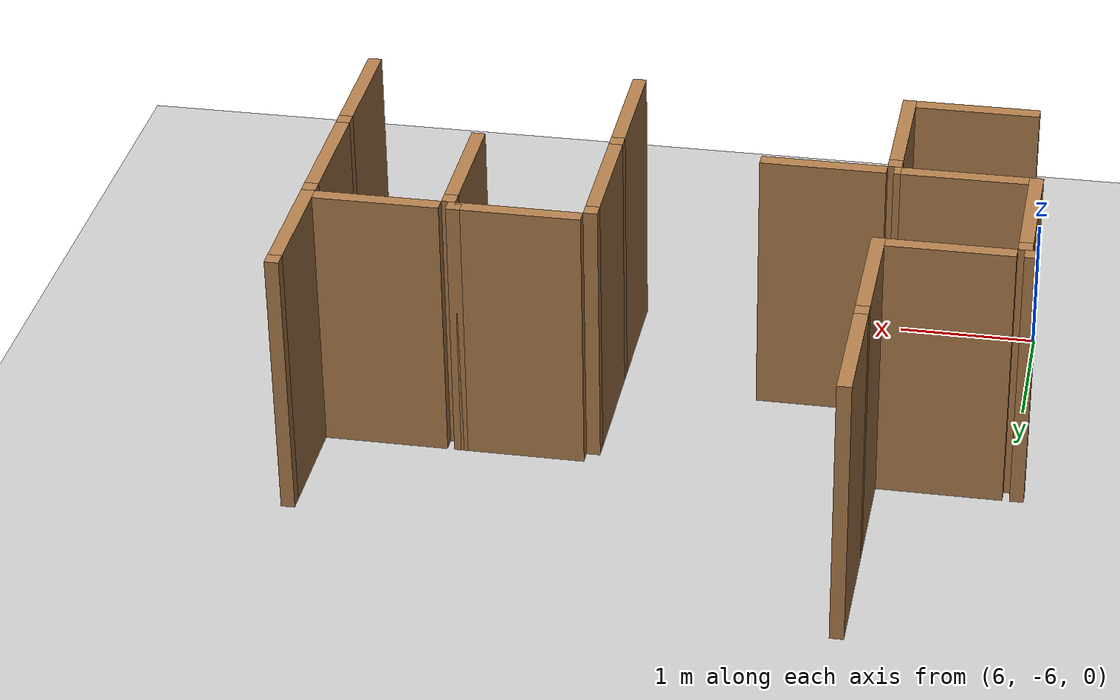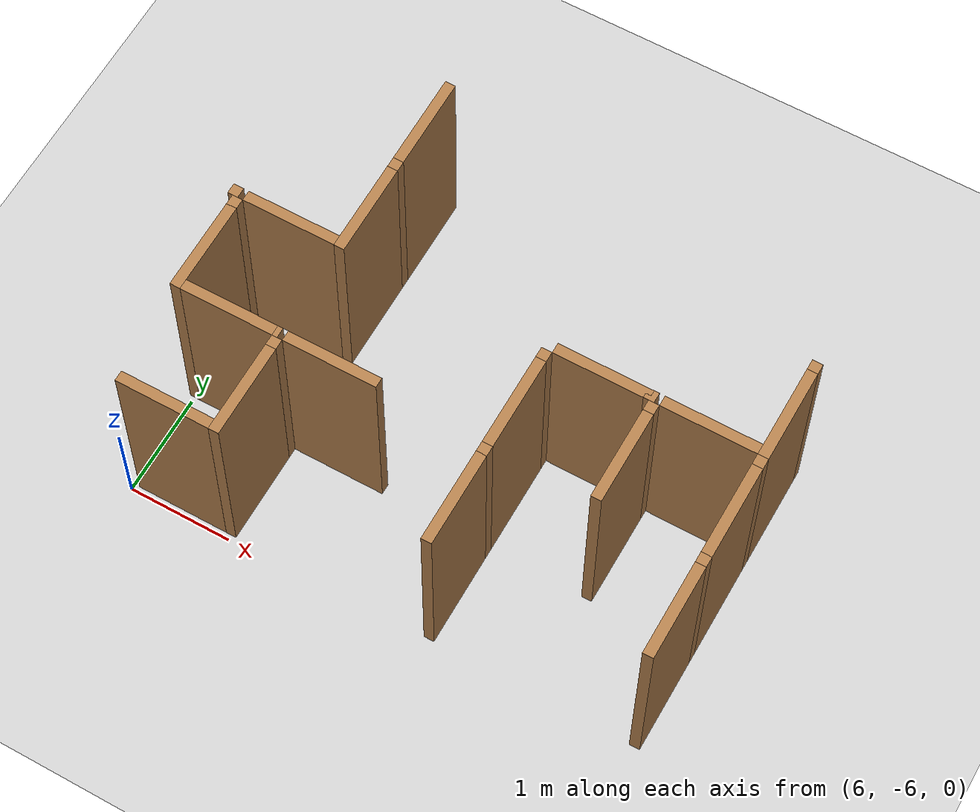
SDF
<sdf version="1.6">
 <world name="default">
  <include><uri>model://sun</uri></include>
  <model name="ground_plane">
   <static>true</static>
   <link name="link">
    <collision name="collision"><geometry><plane><size>12.0 12.0</size></plane></geometry></collision>
    <visual name="visual">
     <cast_shadows>false</cast_shadows>
     <geometry><plane><size>12.0 12.0</size></plane></geometry>
     <material>
      <script><uri>file://media/materials/scripts/gazebo.material</uri><name>Gazebo/Grey</name></script>
     </material>
    </visual>
   </link>
   <pose>6.0 -6.0 0 0 0 0</pose>
  </model>
  <model name="vwall_2_7">
   <pose>7.0 -2.5 1.0 0 0 0</pose>
   <link name="link">
    <collision name="collision"><geometry><box><size>0.1 0.9 2</size></box></geometry></collision>
    <visual name="visual">
     <geometry><box><size>0.1 0.9 2</size></box></geometry>
     <material>
      <script><uri>file://media/materials/scripts/gazebo.material</uri><name>Gazebo/Wood</name></script>
     </material>
    </visual>
   </link>
  </model>
  <model name="vwall_3_7">
   <pose>7.0 -3.5 1.0 0 0 0</pose>
   <link name="link">
    <collision name="collision"><geometry><box><size>0.1 0.9 2</size></box></geometry></collision>
    <visual name="visual">
     <geometry><box><size>0.1 0.9 2</size></box></geometry>
     <material>
      <script><uri>file://media/materials/scripts/gazebo.material</uri><name>Gazebo/Wood</name></script>
     </material>
    </visual>
   </link>
  </model>
  <model name="joint_7.0_-3.0">
   <pose>7.0 -3.0 1.0 0 0 0</pose>
   <link name="link">
    <collision name="collision"><geometry><box><size>0.1 0.1 2</size></box></geometry></collision>
    <visual name="visual">
     <geometry><box><size>0.1 0.1 2</size></box></geometry>
     <material>
      <script><uri>file://media/materials/scripts/gazebo.material</uri><name>Gazebo/Wood</name></script>
     </material>
    </visual>
   </link>
  </model>
  <model name="vwall_3_11">
   <pose>11.0 -3.5 1.0 0 0 0</pose>
   <link name="link">
    <collision name="collision"><geometry><box><size>0.1 0.9 2</size></box></geometry></collision>
    <visual name="visual">
     <geometry><box><size>0.1 0.9 2</size></box></geometry>
     <material>
      <script><uri>file://media/materials/scripts/gazebo.material</uri><name>Gazebo/Wood</name></script>
     </material>
    </visual>
   </link>
  </model>
  <model name="joint_11.0_-3.0">
   <pose>11.0 -3.0 1.0 0 0 0</pose>
   <link name="link">
    <collision name="collision"><geometry><box><size>0.1 0.1 2</size></box></geometry></collision>
    <visual name="visual">
     <geometry><box><size>0.1 0.1 2</size></box></geometry>
     <material>
      <script><uri>file://media/materials/scripts/gazebo.material</uri><name>Gazebo/Wood</name></script>
     </material>
    </visual>
   </link>
  </model>
  <model name="vwall_4_6">
   <pose>6.0 -4.5 1.0 0 0 0</pose>
   <link name="link">
    <collision name="collision"><geometry><box><size>0.1 0.9 2</size></box></geometry></collision>
    <visual name="visual">
     <geometry><box><size>0.1 0.9 2</size></box></geometry>
     <material>
      <script><uri>file://media/materials/scripts/gazebo.material</uri><name>Gazebo/Wood</name></script>
     </material>
    </visual>
   </link>
  </model>
  <model name="joint_6.0_-4.0">
   <pose>6.0 -4.0 1.0 0 0 0</pose>
   <link name="link">
    <collision name="collision"><geometry><box><size>0.1 0.1 2</size></box></geometry></collision>
    <visual name="visual">
     <geometry><box><size>0.1 0.1 2</size></box></geometry>
     <material>
      <script><uri>file://media/materials/scripts/gazebo.material</uri><name>Gazebo/Wood</name></script>
     </material>
    </visual>
   </link>
  </model>
  <model name="vwall_4_9">
   <pose>9.0 -4.5 1.0 0 0 0</pose>
   <link name="link">
    <collision name="collision"><geometry><box><size>0.1 0.9 2</size></box></geometry></collision>
    <visual name="visual">
     <geometry><box><size>0.1 0.9 2</size></box></geometry>
     <material>
      <script><uri>file://media/materials/scripts/gazebo.material</uri><name>Gazebo/Wood</name></script>
     </material>
    </visual>
   </link>
  </model>
  <model name="joint_9.0_-4.0">
   <pose>9.0 -4.0 1.0 0 0 0</pose>
   <link name="link">
    <collision name="collision"><geometry><box><size>0.1 0.1 2</size></box></geometry></collision>
    <visual name="visual">
     <geometry><box><size>0.1 0.1 2</size></box></geometry>
     <material>
      <script><uri>file://media/materials/scripts/gazebo.material</uri><name>Gazebo/Wood</name></script>
     </material>
    </visual>
   </link>
  </model>
  <model name="vwall_4_10">
   <pose>10.0 -4.5 1.0 0 0 0</pose>
   <link name="link">
    <collision name="collision"><geometry><box><size>0.1 0.9 2</size></box></geometry></collision>
    <visual name="visual">
     <geometry><box><size>0.1 0.9 2</size></box></geometry>
     <material>
      <script><uri>file://media/materials/scripts/gazebo.material</uri><name>Gazebo/Wood</name></script>
     </material>
    </visual>
   </link>
  </model>
  <model name="joint_10.0_-4.0">
   <pose>10.0 -4.0 1.0 0 0 0</pose>
   <link name="link">
    <collision name="collision"><geometry><box><size>0.1 0.1 2</size></box></geometry></collision>
    <visual name="visual">
     <geometry><box><size>0.1 0.1 2</size></box></geometry>
     <material>
      <script><uri>file://media/materials/scripts/gazebo.material</uri><name>Gazebo/Wood</name></script>
     </material>
    </visual>
   </link>
  </model>
  <model name="vwall_4_11">
   <pose>11.0 -4.5 1.0 0 0 0</pose>
   <link name="link">
    <collision name="collision"><geometry><box><size>0.1 0.9 2</size></box></geometry></collision>
    <visual name="visual">
     <geometry><box><size>0.1 0.9 2</size></box></geometry>
     <material>
      <script><uri>file://media/materials/scripts/gazebo.material</uri><name>Gazebo/Wood</name></script>
     </material>
    </visual>
   </link>
  </model>
  <model name="joint_11.0_-4.0">
   <pose>11.0 -4.0 1.0 0 0 0</pose>
   <link name="link">
    <collision name="collision"><geometry><box><size>0.1 0.1 2</size></box></geometry></collision>
    <visual name="visual">
     <geometry><box><size>0.1 0.1 2</size></box></geometry>
     <material>
      <script><uri>file://media/materials/scripts/gazebo.material</uri><name>Gazebo/Wood</name></script>
     </material>
    </visual>
   </link>
  </model>
  <model name="vwall_5_7">
   <pose>7.0 -5.5 1.0 0 0 0</pose>
   <link name="link">
    <collision name="collision"><geometry><box><size>0.1 0.9 2</size></box></geometry></collision>
    <visual name="visual">
     <geometry><box><size>0.1 0.9 2</size></box></geometry>
     <material>
      <script><uri>file://media/materials/scripts/gazebo.material</uri><name>Gazebo/Wood</name></script>
     </material>
    </visual>
   </link>
  </model>
  <model name="joint_7.0_-5.0">
   <pose>7.0 -5.0 1.0 0 0 0</pose>
   <link name="link">
    <collision name="collision"><geometry><box><size>0.1 0.1 2</size></box></geometry></collision>
    <visual name="visual">
     <geometry><box><size>0.1 0.1 2</size></box></geometry>
     <material>
      <script><uri>file://media/materials/scripts/gazebo.material</uri><name>Gazebo/Wood</name></script>
     </material>
    </visual>
   </link>
  </model>
  <model name="vwall_5_9">
   <pose>9.0 -5.5 1.0 0 0 0</pose>
   <link name="link">
    <collision name="collision"><geometry><box><size>0.1 0.9 2</size></box></geometry></collision>
    <visual name="visual">
     <geometry><box><size>0.1 0.9 2</size></box></geometry>
     <material>
      <script><uri>file://media/materials/scripts/gazebo.material</uri><name>Gazebo/Wood</name></script>
     </material>
    </visual>
   </link>
  </model>
  <model name="joint_9.0_-5.0">
   <pose>9.0 -5.0 1.0 0 0 0</pose>
   <link name="link">
    <collision name="collision"><geometry><box><size>0.1 0.1 2</size></box></geometry></collision>
    <visual name="visual">
     <geometry><box><size>0.1 0.1 2</size></box></geometry>
     <material>
      <script><uri>file://media/materials/scripts/gazebo.material</uri><name>Gazebo/Wood</name></script>
     </material>
    </visual>
   </link>
  </model>
  <model name="vwall_5_11">
   <pose>11.0 -5.5 1.0 0 0 0</pose>
   <link name="link">
    <collision name="collision"><geometry><box><size>0.1 0.9 2</size></box></geometry></collision>
    <visual name="visual">
     <geometry><box><size>0.1 0.9 2</size></box></geometry>
     <material>
      <script><uri>file://media/materials/scripts/gazebo.material</uri><name>Gazebo/Wood</name></script>
     </material>
    </visual>
   </link>
  </model>
  <model name="joint_11.0_-5.0">
   <pose>11.0 -5.0 1.0 0 0 0</pose>
   <link name="link">
    <collision name="collision"><geometry><box><size>0.1 0.1 2</size></box></geometry></collision>
    <visual name="visual">
     <geometry><box><size>0.1 0.1 2</size></box></geometry>
     <material>
      <script><uri>file://media/materials/scripts/gazebo.material</uri><name>Gazebo/Wood</name></script>
     </material>
    </visual>
   </link>
  </model>
  <model name="joint_5.95_-3.9">
   <pose>5.95 -3.9 1.0 0 0 0</pose>
   <link name="link">
    <collision name="collision"><geometry><box><size>0.1 0.1 2</size></box></geometry></collision>
    <visual name="visual">
     <geometry><box><size>0.1 0.1 2</size></box></geometry>
     <material>
      <script><uri>file://media/materials/scripts/gazebo.material</uri><name>Gazebo/Wood</name></script>
     </material>
    </visual>
   </link>
  </model>
  <model name="hwall_3_6">
   <pose>6.5 -3.9 1.0 0 0 0</pose>
   <link name="link">
    <collision name="collision"><geometry><box><size>0.9 0.1 2</size></box></geometry></collision>
    <visual name="visual">
     <geometry><box><size>0.9 0.1 2</size></box></geometry>
     <material>
      <script><uri>file://media/materials/scripts/gazebo.material</uri><name>Gazebo/Wood</name></script>
     </material>
    </visual>
   </link>
  </model>
  <model name="hwall_3_9">
   <pose>9.5 -3.9 1.0 0 0 0</pose>
   <link name="link">
    <collision name="collision"><geometry><box><size>0.9 0.1 2</size></box></geometry></collision>
    <visual name="visual">
     <geometry><box><size>0.9 0.1 2</size></box></geometry>
     <material>
      <script><uri>file://media/materials/scripts/gazebo.material</uri><name>Gazebo/Wood</name></script>
     </material>
    </visual>
   </link>
  </model>
  <model name="joint_9.95_-3.9">
   <pose>9.95 -3.9 1.0 0 0 0</pose>
   <link name="link">
    <collision name="collision"><geometry><box><size>0.1 0.1 2</size></box></geometry></collision>
    <visual name="visual">
     <geometry><box><size>0.1 0.1 2</size></box></geometry>
     <material>
      <script><uri>file://media/materials/scripts/gazebo.material</uri><name>Gazebo/Wood</name></script>
     </material>
    </visual>
   </link>
  </model>
  <model name="hwall_3_10">
   <pose>10.5 -3.9 1.0 0 0 0</pose>
   <link name="link">
    <collision name="collision"><geometry><box><size>0.9 0.1 2</size></box></geometry></collision>
    <visual name="visual">
     <geometry><box><size>0.9 0.1 2</size></box></geometry>
     <material>
      <script><uri>file://media/materials/scripts/gazebo.material</uri><name>Gazebo/Wood</name></script>
     </material>
    </visual>
   </link>
  </model>
  <model name="hwall_4_6">
   <pose>6.5 -4.9 1.0 0 0 0</pose>
   <link name="link">
    <collision name="collision"><geometry><box><size>0.9 0.1 2</size></box></geometry></collision>
    <visual name="visual">
     <geometry><box><size>0.9 0.1 2</size></box></geometry>
     <material>
      <script><uri>file://media/materials/scripts/gazebo.material</uri><name>Gazebo/Wood</name></script>
     </material>
    </visual>
   </link>
  </model>
  <model name="joint_6.95_-4.9">
   <pose>6.95 -4.9 1.0 0 0 0</pose>
   <link name="link">
    <collision name="collision"><geometry><box><size>0.1 0.1 2</size></box></geometry></collision>
    <visual name="visual">
     <geometry><box><size>0.1 0.1 2</size></box></geometry>
     <material>
      <script><uri>file://media/materials/scripts/gazebo.material</uri><name>Gazebo/Wood</name></script>
     </material>
    </visual>
   </link>
  </model>
  <model name="hwall_4_7">
   <pose>7.5 -4.9 1.0 0 0 0</pose>
   <link name="link">
    <collision name="collision"><geometry><box><size>0.9 0.1 2</size></box></geometry></collision>
    <visual name="visual">
     <geometry><box><size>0.9 0.1 2</size></box></geometry>
     <material>
      <script><uri>file://media/materials/scripts/gazebo.material</uri><name>Gazebo/Wood</name></script>
     </material>
    </visual>
   </link>
  </model>
  <model name="hwall_5_6">
   <pose>6.5 -5.9 1.0 0 0 0</pose>
   <link name="link">
    <collision name="collision"><geometry><box><size>0.9 0.1 2</size></box></geometry></collision>
    <visual name="visual">
     <geometry><box><size>0.9 0.1 2</size></box></geometry>
     <material>
      <script><uri>file://media/materials/scripts/gazebo.material</uri><name>Gazebo/Wood</name></script>
     </material>
    </visual>
   </link>
  </model>
 </world>
</sdf>
